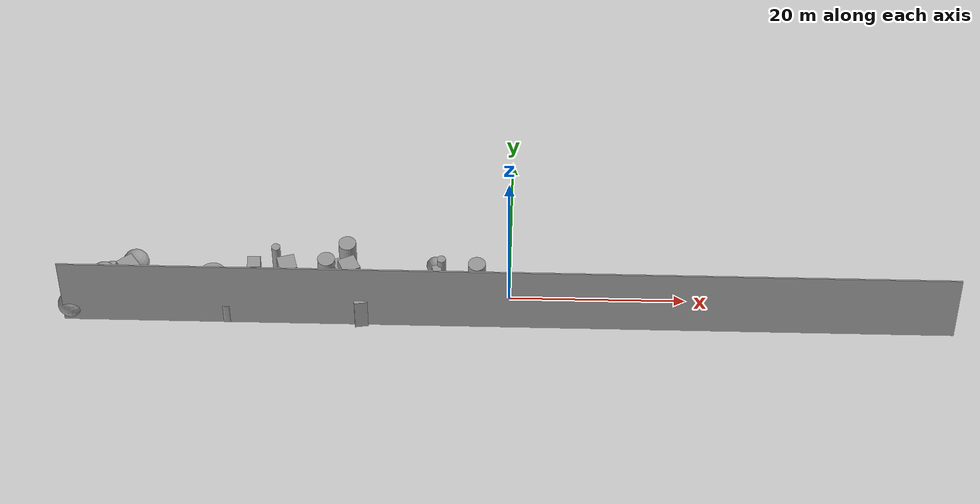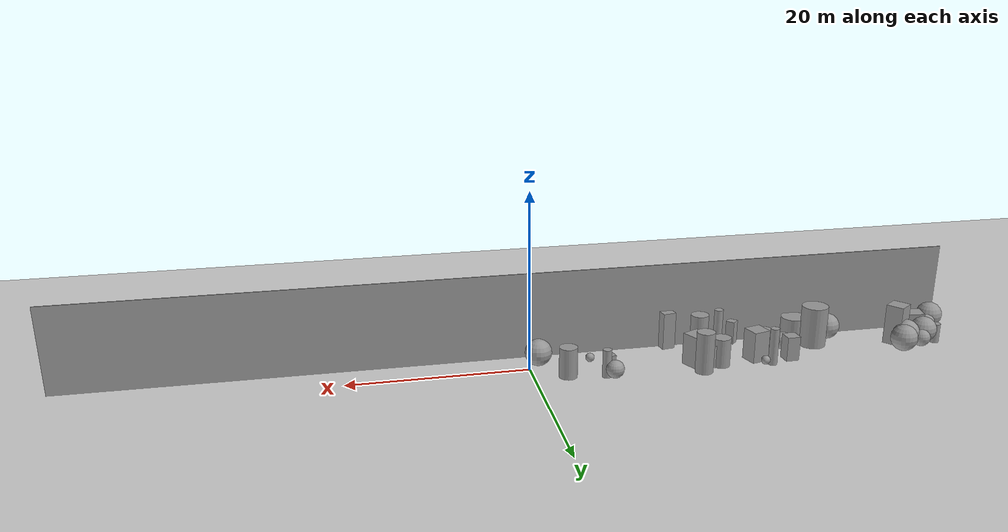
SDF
<sdf version="1.6">
 <world name="default">
  <model name="ground_plane">
   <static>1</static>
   <link name="link">
    <collision name="collision">
     <geometry><plane><normal>0 0 1</normal><size>100 100</size></plane></geometry>
     <surface>
      <contact><collide_bitmask>65535</collide_bitmask></contact>
      <friction><ode><mu>100</mu><mu2>50</mu2></ode></friction>
     </surface>
    </collision>
    <visual name="visual">
     <cast_shadows>0</cast_shadows>
     <geometry><plane><normal>0 0 1</normal><size>100 100</size></plane></geometry>
     <material>
      <script><uri>file://media/materials/scripts/gazebo.material</uri><name>Gazebo/Grey</name></script>
     </material>
    </visual>
   </link>
  </model>
  <model name="wall_100m">
   <link name="Wall_0">
    <pose>2e-06 0 0 0 -0 3.14159</pose>
    <inertial>
     <mass>1</mass>
     <inertia><ixx>1</ixx><ixy>0</ixy><ixz>0</ixz><iyy>1</iyy><iyz>0</iyz><izz>1</izz></inertia>
    </inertial>
    <visual name="Wall_0_Visual">
     <pose>0 0 1.25 0 -0 0</pose>
     <geometry><box><size>100.75 0.15 10</size></box></geometry>
     <material>
      <script><uri>file://media/materials/scripts/gazebo.material</uri><name>Gazebo/Grey</name></script>
      <ambient>1 1 1 1</ambient>
      <shader type="vertex"><normal_map>__default__</normal_map></shader>
      <diffuse>0.7 0.7 0.7 1</diffuse>
      <specular>0.01 0.01 0.01 1</specular>
      <emissive>0 0 0 1</emissive>
     </material>
     <meta><layer>0</layer></meta>
    </visual>
    <collision name="Wall_0_Collision">
     <pose>0 0 1.25 0 -0 0</pose>
     <geometry><box><size>100.75 0.15 10</size></box></geometry>
     <surface>
      <friction>
       <ode><mu>1</mu><mu2>1</mu2><fdir1>0 0 0</fdir1><slip1>0</slip1><slip2>0</slip2></ode>
       <torsional>
        <coefficient>1</coefficient>
        <patch_radius>0</patch_radius>
        <surface_radius>0</surface_radius>
        <use_patch_radius>1</use_patch_radius>
        <ode><slip>0</slip></ode>
       </torsional>
      </friction>
      <bounce><restitution_coefficient>0</restitution_coefficient><threshold>1e+06</threshold></bounce>
      <contact>
       <collide_without_contact>0</collide_without_contact>
       <collide_without_contact_bitmask>1</collide_without_contact_bitmask>
       <collide_bitmask>1</collide_bitmask>
       <ode>
        <soft_cfm>0</soft_cfm>
        <soft_erp>0.2</soft_erp>
        <kp>1e+13</kp>
        <kd>1</kd>
        <max_vel>0.01</max_vel>
        <min_depth>0</min_depth>
       </ode>
       <bullet>
        <split_impulse>1</split_impulse>
        <split_impulse_penetration_threshold>-0.01</split_impulse_penetration_threshold>
        <soft_cfm>0</soft_cfm>
        <soft_erp>0.2</soft_erp>
        <kp>1e+13</kp>
        <kd>1</kd>
       </bullet>
      </contact>
     </surface>
    </collision>
   </link>
   <static>1</static>
   <pose>-0.03768 -4 3.5 0 -0 0</pose>
  </model>
  <model name="large_box_2">
   <static>1</static>
   <pose>-43.263976689088615 0.4576303700261164 0 0 -0 0.6377510917600863</pose>
   <link name="link">
    <inertial>
     <mass>1</mass>
     <inertia><ixx>0.1</ixx><ixy>0</ixy><ixz>0</ixz><iyy>0.1</iyy><iyz>0</iyz><izz>0.1</izz></inertia>
    </inertial>
    <collision name="collision"><geometry><box><size>2 2 9.066200073322698</size></box></geometry></collision>
    <visual name="visual">
     <geometry><box><size>2 2 9.066200073322698</size></box></geometry>
     <material>
      <script><name>Gazebo/Grey</name><uri>file://media/materials/scripts/gazebo.material</uri></script>
     </material>
    </visual>
   </link>
  </model>
  <model name="large_box_3">
   <static>1</static>
   <pose>-18.32711765033873 1.77899702579968 0 0 -0 5.145590252966843</pose>
   <link name="link">
    <inertial>
     <mass>1</mass>
     <inertia><ixx>0.1</ixx><ixy>0</ixy><ixz>0</ixz><iyy>0.1</iyy><iyz>0</iyz><izz>0.1</izz></inertia>
    </inertial>
    <collision name="collision"><geometry><box><size>2 2 7.009485034829693</size></box></geometry></collision>
    <visual name="visual">
     <geometry><box><size>2 2 7.009485034829693</size></box></geometry>
     <material>
      <script><name>Gazebo/Grey</name><uri>file://media/materials/scripts/gazebo.material</uri></script>
     </material>
    </visual>
   </link>
  </model>
  <model name="large_box_4">
   <static>1</static>
   <pose>-47.21306374137786 -2.4445854731029284 0 0 -0 4.51358533258249</pose>
   <link name="link">
    <inertial>
     <mass>1</mass>
     <inertia><ixx>0.1</ixx><ixy>0</ixy><ixz>0</ixz><iyy>0.1</iyy><iyz>0</iyz><izz>0.1</izz></inertia>
    </inertial>
    <collision name="collision"><geometry><box><size>2 2 4.586616169738411</size></box></geometry></collision>
    <visual name="visual">
     <geometry><box><size>2 2 4.586616169738411</size></box></geometry>
     <material>
      <script><name>Gazebo/Grey</name><uri>file://media/materials/scripts/gazebo.material</uri></script>
     </material>
    </visual>
   </link>
  </model>
  <model name="large_box_6">
   <static>1</static>
   <pose>-25.40817143425049 1.8347969766191454 0 0 -0 3.4057619778174786</pose>
   <link name="link">
    <inertial>
     <mass>1</mass>
     <inertia><ixx>0.1</ixx><ixy>0</ixy><ixz>0</ixz><iyy>0.1</iyy><iyz>0</iyz><izz>0.1</izz></inertia>
    </inertial>
    <collision name="collision"><geometry><box><size>2 2 6.936874160618575</size></box></geometry></collision>
    <visual name="visual">
     <geometry><box><size>2 2 6.936874160618575</size></box></geometry>
     <material>
      <script><name>Gazebo/Grey</name><uri>file://media/materials/scripts/gazebo.material</uri></script>
     </material>
    </visual>
   </link>
  </model>
  <model name="medium_box_1">
   <static>1</static>
   <pose>-29.263122619373995 2.4692349136486706 0 0 -0 0.04185766368881375</pose>
   <link name="link">
    <inertial>
     <mass>1</mass>
     <inertia><ixx>0.1</ixx><ixy>0</ixy><ixz>0</ixz><iyy>0.1</iyy><iyz>0</iyz><izz>0.1</izz></inertia>
    </inertial>
    <collision name="collision"><geometry><box><size>1.5 1.5 5.376517354626069</size></box></geometry></collision>
    <visual name="visual">
     <geometry><box><size>1.5 1.5 5.376517354626069</size></box></geometry>
     <material>
      <script><name>Gazebo/Grey</name><uri>file://media/materials/scripts/gazebo.material</uri></script>
     </material>
    </visual>
   </link>
  </model>
  <model name="medium_box_5">
   <static>1</static>
   <pose>-19.4197417285744 2.710067714216658 0 0 -0 5.057990039477878</pose>
   <link name="link">
    <inertial>
     <mass>1</mass>
     <inertia><ixx>0.1</ixx><ixy>0</ixy><ixz>0</ixz><iyy>0.1</iyy><iyz>0</iyz><izz>0.1</izz></inertia>
    </inertial>
    <collision name="collision"><geometry><box><size>1.5 1.5 4.892491159771994</size></box></geometry></collision>
    <visual name="visual">
     <geometry><box><size>1.5 1.5 4.892491159771994</size></box></geometry>
     <material>
      <script><name>Gazebo/Grey</name><uri>file://media/materials/scripts/gazebo.material</uri></script>
     </material>
    </visual>
   </link>
  </model>
  <model name="medium_box_6">
   <static>1</static>
   <pose>-16.749742695602897 -3.647777017871358 0 0 -0 0.1512156402418875</pose>
   <link name="link">
    <inertial>
     <mass>1</mass>
     <inertia><ixx>0.1</ixx><ixy>0</ixy><ixz>0</ixz><iyy>0.1</iyy><iyz>0</iyz><izz>0.1</izz></inertia>
    </inertial>
    <collision name="collision"><geometry><box><size>1.5 1.5 8.358294096050301</size></box></geometry></collision>
    <visual name="visual">
     <geometry><box><size>1.5 1.5 8.358294096050301</size></box></geometry>
     <material>
      <script><name>Gazebo/Grey</name><uri>file://media/materials/scripts/gazebo.material</uri></script>
     </material>
    </visual>
   </link>
  </model>
  <model name="small_box_0">
   <static>1</static>
   <pose>-8.371626071864654 2.393992352529927 0 0 -0 4.885616380695228</pose>
   <link name="link">
    <inertial>
     <mass>1</mass>
     <inertia><ixx>0.1</ixx><ixy>0</ixy><ixz>0</ixz><iyy>0.1</iyy><iyz>0</iyz><izz>0.1</izz></inertia>
    </inertial>
    <collision name="collision"><geometry><box><size>1 1 4.298564003812228</size></box></geometry></collision>
    <visual name="visual">
     <geometry><box><size>1 1 4.298564003812228</size></box></geometry>
     <material>
      <script><name>Gazebo/Grey</name><uri>file://media/materials/scripts/gazebo.material</uri></script>
     </material>
    </visual>
   </link>
  </model>
  <model name="small_box_1">
   <static>1</static>
   <pose>-24.54902912954293 -3.3130540355056954 0 0 -0 2.3443078904165735</pose>
   <link name="link">
    <inertial>
     <mass>1</mass>
     <inertia><ixx>0.1</ixx><ixy>0</ixy><ixz>0</ixz><iyy>0.1</iyy><iyz>0</iyz><izz>0.1</izz></inertia>
    </inertial>
    <collision name="collision"><geometry><box><size>1 1 5.174501659771466</size></box></geometry></collision>
    <visual name="visual">
     <geometry><box><size>1 1 5.174501659771466</size></box></geometry>
     <material>
      <script><name>Gazebo/Grey</name><uri>file://media/materials/scripts/gazebo.material</uri></script>
     </material>
    </visual>
   </link>
  </model>
  <model name="small_box_2">
   <static>1</static>
   <pose>-19.70019158837878 -1.4441013432638838 0 0 -0 2.792202467821192</pose>
   <link name="link">
    <inertial>
     <mass>1</mass>
     <inertia><ixx>0.1</ixx><ixy>0</ixy><ixz>0</ixz><iyy>0.1</iyy><iyz>0</iyz><izz>0.1</izz></inertia>
    </inertial>
    <collision name="collision"><geometry><box><size>1 1 5.017814078405288</size></box></geometry></collision>
    <visual name="visual">
     <geometry><box><size>1 1 5.017814078405288</size></box></geometry>
     <material>
      <script><name>Gazebo/Grey</name><uri>file://media/materials/scripts/gazebo.material</uri></script>
     </material>
    </visual>
   </link>
  </model>
  <model name="large_sphere_1">
   <static>1</static>
   <pose>-35.83000305833765 -2.1597657967280535 1.5 0 -0 0.7295520922717147</pose>
   <link name="link">
    <inertial>
     <mass>1</mass>
     <inertia><ixx>0.1</ixx><ixy>0</ixy><ixz>0</ixz><iyy>0.1</iyy><iyz>0</iyz><izz>0.1</izz></inertia>
    </inertial>
    <collision name="collision"><geometry><sphere><radius>1.5</radius></sphere></geometry></collision>
    <visual name="visual">
     <geometry><sphere><radius>1.5</radius></sphere></geometry>
     <material>
      <script><name>Gazebo/Grey</name><uri>file://media/materials/scripts/gazebo.material</uri></script>
     </material>
    </visual>
   </link>
  </model>
  <model name="large_sphere_2">
   <static>1</static>
   <pose>-42.85109328853617 3.0417903348551265 1.5 0 -0 0.8495886973223891</pose>
   <link name="link">
    <inertial>
     <mass>1</mass>
     <inertia><ixx>0.1</ixx><ixy>0</ixy><ixz>0</ixz><iyy>0.1</iyy><iyz>0</iyz><izz>0.1</izz></inertia>
    </inertial>
    <collision name="collision"><geometry><sphere><radius>1.5</radius></sphere></geometry></collision>
    <visual name="visual">
     <geometry><sphere><radius>1.5</radius></sphere></geometry>
     <material>
      <script><name>Gazebo/Grey</name><uri>file://media/materials/scripts/gazebo.material</uri></script>
     </material>
    </visual>
   </link>
  </model>
  <model name="large_sphere_3">
   <static>1</static>
   <pose>-43.90851300539516 1.5851750777963405 1.5 0 -0 3.4185245884605613</pose>
   <link name="link">
    <inertial>
     <mass>1</mass>
     <inertia><ixx>0.1</ixx><ixy>0</ixy><ixz>0</ixz><iyy>0.1</iyy><iyz>0</iyz><izz>0.1</izz></inertia>
    </inertial>
    <collision name="collision"><geometry><sphere><radius>1.5</radius></sphere></geometry></collision>
    <visual name="visual">
     <geometry><sphere><radius>1.5</radius></sphere></geometry>
     <material>
      <script><name>Gazebo/Grey</name><uri>file://media/materials/scripts/gazebo.material</uri></script>
     </material>
    </visual>
   </link>
  </model>
  <model name="large_sphere_4">
   <static>1</static>
   <pose>-46.359757999301735 1.1242252722256438 1.5 0 -0 4.887484209237506</pose>
   <link name="link">
    <inertial>
     <mass>1</mass>
     <inertia><ixx>0.1</ixx><ixy>0</ixy><ixz>0</ixz><iyy>0.1</iyy><iyz>0</iyz><izz>0.1</izz></inertia>
    </inertial>
    <collision name="collision"><geometry><sphere><radius>1.5</radius></sphere></geometry></collision>
    <visual name="visual">
     <geometry><sphere><radius>1.5</radius></sphere></geometry>
     <material>
      <script><name>Gazebo/Grey</name><uri>file://media/materials/scripts/gazebo.material</uri></script>
     </material>
    </visual>
   </link>
  </model>
  <model name="large_sphere_5">
   <static>1</static>
   <pose>-1.2314172860638877 -1.2508976875368116 1.5 0 -0 2.797267151106632</pose>
   <link name="link">
    <inertial>
     <mass>1</mass>
     <inertia><ixx>0.1</ixx><ixy>0</ixy><ixz>0</ixz><iyy>0.1</iyy><iyz>0</iyz><izz>0.1</izz></inertia>
    </inertial>
    <collision name="collision"><geometry><sphere><radius>1.5</radius></sphere></geometry></collision>
    <visual name="visual">
     <geometry><sphere><radius>1.5</radius></sphere></geometry>
     <material>
      <script><name>Gazebo/Grey</name><uri>file://media/materials/scripts/gazebo.material</uri></script>
     </material>
    </visual>
   </link>
  </model>
  <model name="large_sphere_7">
   <static>1</static>
   <pose>-49.647630694518675 -3.1326218880237375 1.5 0 -0 4.545077154214717</pose>
   <link name="link">
    <inertial>
     <mass>1</mass>
     <inertia><ixx>0.1</ixx><ixy>0</ixy><ixz>0</ixz><iyy>0.1</iyy><iyz>0</iyz><izz>0.1</izz></inertia>
    </inertial>
    <collision name="collision"><geometry><sphere><radius>1.5</radius></sphere></geometry></collision>
    <visual name="visual">
     <geometry><sphere><radius>1.5</radius></sphere></geometry>
     <material>
      <script><name>Gazebo/Grey</name><uri>file://media/materials/scripts/gazebo.material</uri></script>
     </material>
    </visual>
   </link>
  </model>
  <model name="medium_sphere_1">
   <static>1</static>
   <pose>-29.512575779890827 -0.1273318212093244 1 0 -0 0.0010707494767751725</pose>
   <link name="link">
    <inertial>
     <mass>1</mass>
     <inertia><ixx>0.1</ixx><ixy>0</ixy><ixz>0</ixz><iyy>0.1</iyy><iyz>0</iyz><izz>0.1</izz></inertia>
    </inertial>
    <collision name="collision"><geometry><sphere><radius>1</radius></sphere></geometry></collision>
    <visual name="visual">
     <geometry><sphere><radius>1</radius></sphere></geometry>
     <material>
      <script><name>Gazebo/Grey</name><uri>file://media/materials/scripts/gazebo.material</uri></script>
     </material>
    </visual>
   </link>
  </model>
  <model name="medium_sphere_2">
   <static>1</static>
   <pose>-8.583379579579173 3.7293425713551347 1 0 -0 3.910817490098157</pose>
   <link name="link">
    <inertial>
     <mass>1</mass>
     <inertia><ixx>0.1</ixx><ixy>0</ixy><ixz>0</ixz><iyy>0.1</iyy><iyz>0</iyz><izz>0.1</izz></inertia>
    </inertial>
    <collision name="collision"><geometry><sphere><radius>1</radius></sphere></geometry></collision>
    <visual name="visual">
     <geometry><sphere><radius>1</radius></sphere></geometry>
     <material>
      <script><name>Gazebo/Grey</name><uri>file://media/materials/scripts/gazebo.material</uri></script>
     </material>
    </visual>
   </link>
  </model>
  <model name="medium_sphere_4">
   <static>1</static>
   <pose>-48.836796352783594 -2.2467156930728622 1 0 -0 1.5013316271939334</pose>
   <link name="link">
    <inertial>
     <mass>1</mass>
     <inertia><ixx>0.1</ixx><ixy>0</ixy><ixz>0</ixz><iyy>0.1</iyy><iyz>0</iyz><izz>0.1</izz></inertia>
    </inertial>
    <collision name="collision"><geometry><sphere><radius>1</radius></sphere></geometry></collision>
    <visual name="visual">
     <geometry><sphere><radius>1</radius></sphere></geometry>
     <material>
      <script><name>Gazebo/Grey</name><uri>file://media/materials/scripts/gazebo.material</uri></script>
     </material>
    </visual>
   </link>
  </model>
  <model name="medium_sphere_7">
   <static>1</static>
   <pose>-45.527927770904995 2.2598452577849555 1 0 -0 5.329455311412861</pose>
   <link name="link">
    <inertial>
     <mass>1</mass>
     <inertia><ixx>0.1</ixx><ixy>0</ixy><ixz>0</ixz><iyy>0.1</iyy><iyz>0</iyz><izz>0.1</izz></inertia>
    </inertial>
    <collision name="collision"><geometry><sphere><radius>1</radius></sphere></geometry></collision>
    <visual name="visual">
     <geometry><sphere><radius>1</radius></sphere></geometry>
     <material>
      <script><name>Gazebo/Grey</name><uri>file://media/materials/scripts/gazebo.material</uri></script>
     </material>
    </visual>
   </link>
  </model>
  <model name="small_sphere_1">
   <static>1</static>
   <pose>-25.867581452892008 3.649355862671115 0.5 0 -0 4.464713558046148</pose>
   <link name="link">
    <inertial>
     <mass>1</mass>
     <inertia><ixx>0.1</ixx><ixy>0</ixy><ixz>0</ixz><iyy>0.1</iyy><iyz>0</iyz><izz>0.1</izz></inertia>
    </inertial>
    <collision name="collision"><geometry><sphere><radius>0.5</radius></sphere></geometry></collision>
    <visual name="visual">
     <geometry><sphere><radius>0.5</radius></sphere></geometry>
     <material>
      <script><name>Gazebo/Grey</name><uri>file://media/materials/scripts/gazebo.material</uri></script>
     </material>
    </visual>
   </link>
  </model>
  <model name="small_sphere_3">
   <static>1</static>
   <pose>-46.14593778610057 -3.42163515004228 0.5 0 -0 4.447751880068196</pose>
   <link name="link">
    <inertial>
     <mass>1</mass>
     <inertia><ixx>0.1</ixx><ixy>0</ixy><ixz>0</ixz><iyy>0.1</iyy><iyz>0</iyz><izz>0.1</izz></inertia>
    </inertial>
    <collision name="collision"><geometry><sphere><radius>0.5</radius></sphere></geometry></collision>
    <visual name="visual">
     <geometry><sphere><radius>0.5</radius></sphere></geometry>
     <material>
      <script><name>Gazebo/Grey</name><uri>file://media/materials/scripts/gazebo.material</uri></script>
     </material>
    </visual>
   </link>
  </model>
  <model name="small_sphere_4">
   <static>1</static>
   <pose>-21.286958353811137 -3.233492417397181 0.5 0 -0 5.947735691518981</pose>
   <link name="link">
    <inertial>
     <mass>1</mass>
     <inertia><ixx>0.1</ixx><ixy>0</ixy><ixz>0</ixz><iyy>0.1</iyy><iyz>0</iyz><izz>0.1</izz></inertia>
    </inertial>
    <collision name="collision"><geometry><sphere><radius>0.5</radius></sphere></geometry></collision>
    <visual name="visual">
     <geometry><sphere><radius>0.5</radius></sphere></geometry>
     <material>
      <script><name>Gazebo/Grey</name><uri>file://media/materials/scripts/gazebo.material</uri></script>
     </material>
    </visual>
   </link>
  </model>
  <model name="small_sphere_6">
   <static>1</static>
   <pose>-7.038510875396398 -0.9924835654451183 0.5 0 -0 4.123244782913064</pose>
   <link name="link">
    <inertial>
     <mass>1</mass>
     <inertia><ixx>0.1</ixx><ixy>0</ixy><ixz>0</ixz><iyy>0.1</iyy><iyz>0</iyz><izz>0.1</izz></inertia>
    </inertial>
    <collision name="collision"><geometry><sphere><radius>0.5</radius></sphere></geometry></collision>
    <visual name="visual">
     <geometry><sphere><radius>0.5</radius></sphere></geometry>
     <material>
      <script><name>Gazebo/Grey</name><uri>file://media/materials/scripts/gazebo.material</uri></script>
     </material>
    </visual>
   </link>
  </model>
  <model name="small_sphere_7">
   <static>1</static>
   <pose>-17.86012867724557 1.4005690504116428 0.5 0 -0 5.734324673865386</pose>
   <link name="link">
    <inertial>
     <mass>1</mass>
     <inertia><ixx>0.1</ixx><ixy>0</ixy><ixz>0</ixz><iyy>0.1</iyy><iyz>0</iyz><izz>0.1</izz></inertia>
    </inertial>
    <collision name="collision"><geometry><sphere><radius>0.5</radius></sphere></geometry></collision>
    <visual name="visual">
     <geometry><sphere><radius>0.5</radius></sphere></geometry>
     <material>
      <script><name>Gazebo/Grey</name><uri>file://media/materials/scripts/gazebo.material</uri></script>
     </material>
    </visual>
   </link>
  </model>
  <model name="large_cylinder_2">
   <static>1</static>
   <pose>-33.55031185952345 -0.8422380899925344 0 0 -0 1.585544164722833</pose>
   <link name="link">
    <inertial>
     <mass>1</mass>
     <inertia><ixx>0.1</ixx><ixy>0</ixy><ixz>0</ixz><iyy>0.1</iyy><iyz>0</iyz><izz>0.1</izz></inertia>
    </inertial>
    <collision name="collision">
     <geometry><cylinder><radius>1.5</radius><length>9.307923040757656</length></cylinder></geometry>
    </collision>
    <visual name="visual">
     <geometry><cylinder><radius>1.5</radius><length>9.307923040757656</length></cylinder></geometry>
     <material>
      <script><name>Gazebo/Grey</name><uri>file://media/materials/scripts/gazebo.material</uri></script>
     </material>
    </visual>
   </link>
  </model>
  <model name="large_cylinder_3">
   <static>1</static>
   <pose>-31.936592202053895 -2.640215525800672 0 0 -0 3.565033541040769</pose>
   <link name="link">
    <inertial>
     <mass>1</mass>
     <inertia><ixx>0.1</ixx><ixy>0</ixy><ixz>0</ixz><iyy>0.1</iyy><iyz>0</iyz><izz>0.1</izz></inertia>
    </inertial>
    <collision name="collision">
     <geometry><cylinder><radius>1.5</radius><length>5.561968813232824</length></cylinder></geometry>
    </collision>
    <visual name="visual">
     <geometry><cylinder><radius>1.5</radius><length>5.561968813232824</length></cylinder></geometry>
     <material>
      <script><name>Gazebo/Grey</name><uri>file://media/materials/scripts/gazebo.material</uri></script>
     </material>
    </visual>
   </link>
  </model>
  <model name="medium_cylinder_0">
   <static>1</static>
   <pose>-27.559666205174437 -0.8974082727655883 0 0 -0 0.9709009305653905</pose>
   <link name="link">
    <inertial>
     <mass>1</mass>
     <inertia><ixx>0.1</ixx><ixy>0</ixy><ixz>0</ixz><iyy>0.1</iyy><iyz>0</iyz><izz>0.1</izz></inertia>
    </inertial>
    <collision name="collision">
     <geometry><cylinder><radius>1</radius><length>4.350133151379394</length></cylinder></geometry>
    </collision>
    <visual name="visual">
     <geometry><cylinder><radius>1</radius><length>4.350133151379394</length></cylinder></geometry>
     <material>
      <script><name>Gazebo/Grey</name><uri>file://media/materials/scripts/gazebo.material</uri></script>
     </material>
    </visual>
   </link>
  </model>
  <model name="medium_cylinder_1">
   <static>1</static>
   <pose>-3.7676101365349908 2.2302120546337427 0 0 -0 5.852803563263922</pose>
   <link name="link">
    <inertial>
     <mass>1</mass>
     <inertia><ixx>0.1</ixx><ixy>0</ixy><ixz>0</ixz><iyy>0.1</iyy><iyz>0</iyz><izz>0.1</izz></inertia>
    </inertial>
    <collision name="collision">
     <geometry><cylinder><radius>1</radius><length>6.6968104024425905</length></cylinder></geometry>
    </collision>
    <visual name="visual">
     <geometry><cylinder><radius>1</radius><length>6.6968104024425905</length></cylinder></geometry>
     <material>
      <script><name>Gazebo/Grey</name><uri>file://media/materials/scripts/gazebo.material</uri></script>
     </material>
    </visual>
   </link>
  </model>
  <model name="medium_cylinder_3">
   <static>1</static>
   <pose>-18.58721781302991 3.9298684246701914 0 0 -0 3.5385954376985262</pose>
   <link name="link">
    <inertial>
     <mass>1</mass>
     <inertia><ixx>0.1</ixx><ixy>0</ixy><ixz>0</ixz><iyy>0.1</iyy><iyz>0</iyz><izz>0.1</izz></inertia>
    </inertial>
    <collision name="collision">
     <geometry><cylinder><radius>1</radius><length>9.10638149661607</length></cylinder></geometry>
    </collision>
    <visual name="visual">
     <geometry><cylinder><radius>1</radius><length>9.10638149661607</length></cylinder></geometry>
     <material>
      <script><name>Gazebo/Grey</name><uri>file://media/materials/scripts/gazebo.material</uri></script>
     </material>
    </visual>
   </link>
  </model>
  <model name="medium_cylinder_4">
   <static>1</static>
   <pose>-20.993868172970753 2.6624488961890433 0 0 -0 1.8057161279649339</pose>
   <link name="link">
    <inertial>
     <mass>1</mass>
     <inertia><ixx>0.1</ixx><ixy>0</ixy><ixz>0</ixz><iyy>0.1</iyy><iyz>0</iyz><izz>0.1</izz></inertia>
    </inertial>
    <collision name="collision">
     <geometry><cylinder><radius>1</radius><length>6.401090468204784</length></cylinder></geometry>
    </collision>
    <visual name="visual">
     <geometry><cylinder><radius>1</radius><length>6.401090468204784</length></cylinder></geometry>
     <material>
      <script><name>Gazebo/Grey</name><uri>file://media/materials/scripts/gazebo.material</uri></script>
     </material>
    </visual>
   </link>
  </model>
  <model name="medium_cylinder_7">
   <static>1</static>
   <pose>-19.699905899296432 -1.0214179831572068 0 0 -0 4.5712836078895664</pose>
   <link name="link">
    <inertial>
     <mass>1</mass>
     <inertia><ixx>0.1</ixx><ixy>0</ixy><ixz>0</ixz><iyy>0.1</iyy><iyz>0</iyz><izz>0.1</izz></inertia>
    </inertial>
    <collision name="collision">
     <geometry><cylinder><radius>1</radius><length>9.185312787123891</length></cylinder></geometry>
    </collision>
    <visual name="visual">
     <geometry><cylinder><radius>1</radius><length>9.185312787123891</length></cylinder></geometry>
     <material>
      <script><name>Gazebo/Grey</name><uri>file://media/materials/scripts/gazebo.material</uri></script>
     </material>
    </visual>
   </link>
  </model>
  <model name="small_cylinder_0">
   <static>1</static>
   <pose>-7.85090201549977 3.0648970183243733 0 0 -0 3.3799876523366894</pose>
   <link name="link">
    <inertial>
     <mass>1</mass>
     <inertia><ixx>0.1</ixx><ixy>0</ixy><ixz>0</ixz><iyy>0.1</iyy><iyz>0</iyz><izz>0.1</izz></inertia>
    </inertial>
    <collision name="collision">
     <geometry><cylinder><radius>0.5</radius><length>6.128198368006055</length></cylinder></geometry>
    </collision>
    <visual name="visual">
     <geometry><cylinder><radius>0.5</radius><length>6.128198368006055</length></cylinder></geometry>
     <material>
      <script><name>Gazebo/Grey</name><uri>file://media/materials/scripts/gazebo.material</uri></script>
     </material>
    </visual>
   </link>
  </model>
  <model name="small_cylinder_1">
   <static>1</static>
   <pose>-47.86577799902878 1.2778910516323352 0 0 -0 1.1487613669028984</pose>
   <link name="link">
    <inertial>
     <mass>1</mass>
     <inertia><ixx>0.1</ixx><ixy>0</ixy><ixz>0</ixz><iyy>0.1</iyy><iyz>0</iyz><izz>0.1</izz></inertia>
    </inertial>
    <collision name="collision">
     <geometry><cylinder><radius>0.5</radius><length>4.298533252907951</length></cylinder></geometry>
    </collision>
    <visual name="visual">
     <geometry><cylinder><radius>0.5</radius><length>4.298533252907951</length></cylinder></geometry>
     <material>
      <script><name>Gazebo/Grey</name><uri>file://media/materials/scripts/gazebo.material</uri></script>
     </material>
    </visual>
   </link>
  </model>
  <model name="small_cylinder_5">
   <static>1</static>
   <pose>-26.74468381568048 3.5250479853559504 0 0 -0 3.9134761522453547</pose>
   <link name="link">
    <inertial>
     <mass>1</mass>
     <inertia><ixx>0.1</ixx><ixy>0</ixy><ixz>0</ixz><iyy>0.1</iyy><iyz>0</iyz><izz>0.1</izz></inertia>
    </inertial>
    <collision name="collision">
     <geometry><cylinder><radius>0.5</radius><length>8.280170864360002</length></cylinder></geometry>
    </collision>
    <visual name="visual">
     <geometry><cylinder><radius>0.5</radius><length>8.280170864360002</length></cylinder></geometry>
     <material>
      <script><name>Gazebo/Grey</name><uri>file://media/materials/scripts/gazebo.material</uri></script>
     </material>
    </visual>
   </link>
  </model>
  <model name="small_cylinder_7">
   <static>1</static>
   <pose>-22.95954794981624 -3.499693063308352 0 0 -0 5.059103210415084</pose>
   <link name="link">
    <inertial>
     <mass>1</mass>
     <inertia><ixx>0.1</ixx><ixy>0</ixy><ixz>0</ixz><iyy>0.1</iyy><iyz>0</iyz><izz>0.1</izz></inertia>
    </inertial>
    <collision name="collision">
     <geometry><cylinder><radius>0.5</radius><length>8.017586800253794</length></cylinder></geometry>
    </collision>
    <visual name="visual">
     <geometry><cylinder><radius>0.5</radius><length>8.017586800253794</length></cylinder></geometry>
     <material>
      <script><name>Gazebo/Grey</name><uri>file://media/materials/scripts/gazebo.material</uri></script>
     </material>
    </visual>
   </link>
  </model>
 </world>
</sdf>
